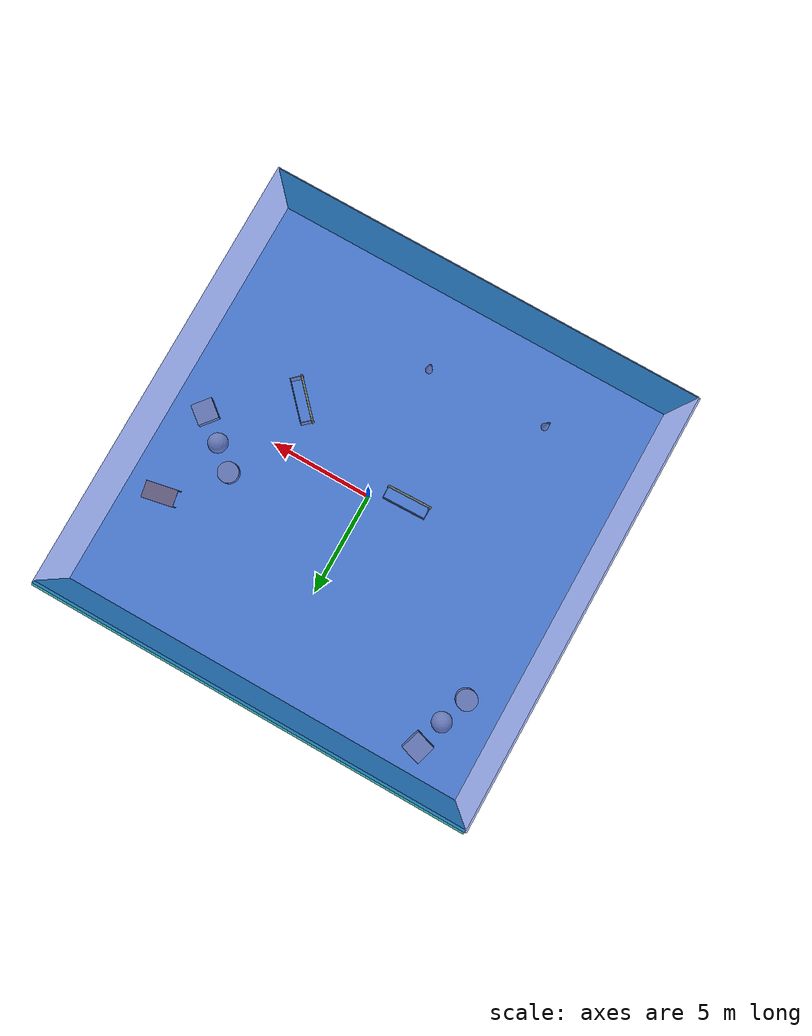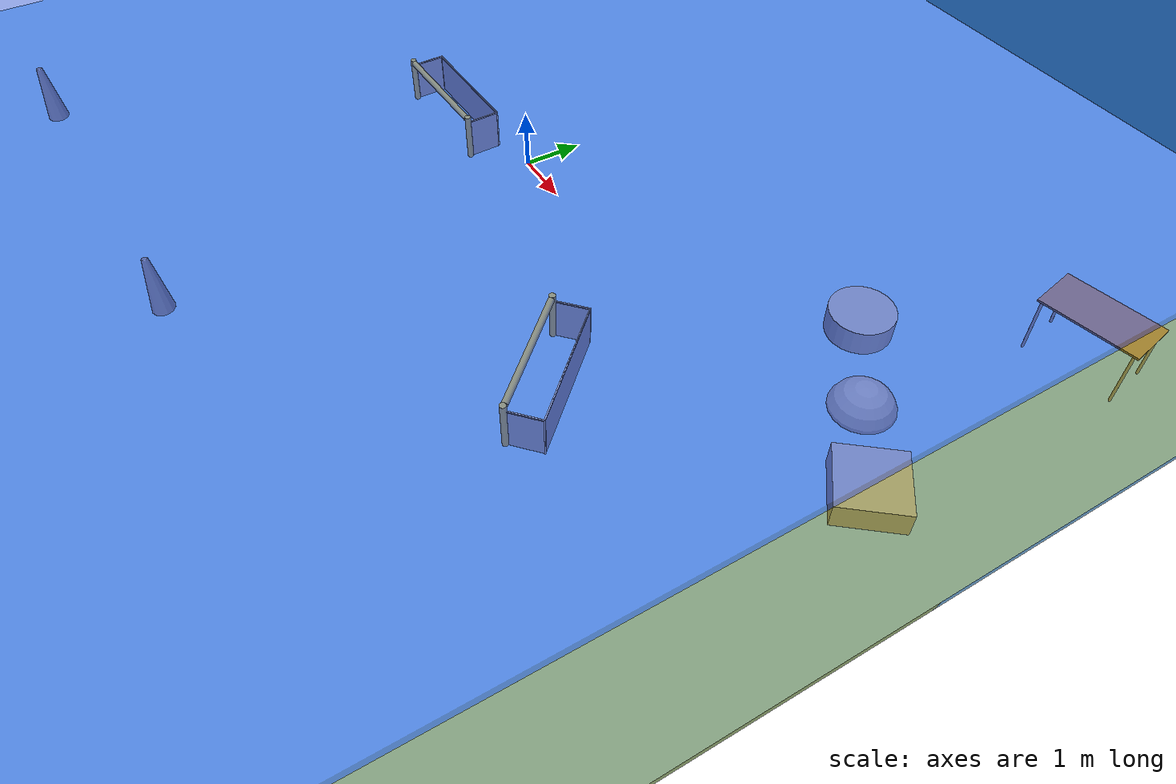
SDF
<sdf version="1.4">
 <world name="default">
  <physics type="ode">
   <max_step_size>0.001</max_step_size>
   <real_time_factor>1</real_time_factor>
   <real_time_update_rate>1000</real_time_update_rate>
   <gravity>0 0 -9.8</gravity>
  </physics>
  <scene><ambient>0.4 0.4 0.4 1</ambient><background>0.7 0.7 0.7 1</background><shadows>1</shadows></scene>
  <model name="Surrounding">
   <static>1</static>
   <link name="Ceiling">
    <collision name="Ceiling_Collision"><geometry><box><size>20 20 0.1</size></box></geometry></collision>
    <visual name="Ceiling_Visual">
     <geometry><box><size>20 20 0.1</size></box></geometry>
     <material>
      <script><uri>file://media/materials/scripts/gazebo.material</uri><name>Gazebo/BlueTransparent</name></script>
     </material>
    </visual>
    <pose>0 0 4.05 0 0 0</pose>
   </link>
   <link name="Wall_South">
    <collision name="Wall_South_Collision">
     <geometry><box><size>20 0 4</size></box></geometry>
     <pose>0 0 2 0 -0 0</pose>
    </collision>
    <visual name="Wall_South_Visual">
     <pose>0 0 2 0 -0 0</pose>
     <geometry><box><size>20 0 4</size></box></geometry>
     <material>
      <script><uri>file://media/materials/scripts/gazebo.material</uri><name>Gazebo/Turquoise</name></script>
     </material>
    </visual>
    <velocity_decay><linear>0</linear><angular>0</angular></velocity_decay>
    <pose>0 -10 0 0 -0 0</pose>
   </link>
   <link name="Wall_East">
    <collision name="Wall_21_Collision">
     <geometry><box><size>20 0 4</size></box></geometry>
     <pose>0 0 2 0 -0 0</pose>
    </collision>
    <visual name="Wall_21_Visual">
     <pose>0 0 2 0 -0 0</pose>
     <geometry><box><size>20 0 4</size></box></geometry>
     <material>
      <script>
       <uri>file://media/materials/scripts/gazebo.material</uri>
       <name>Gazebo/YellowTransparent</name>
      </script>
     </material>
    </visual>
    <velocity_decay><linear>0</linear><angular>0</angular></velocity_decay>
    <pose>10 0 0 0 -0 1.5708</pose>
   </link>
   <link name="Wall_North">
    <collision name="Wall_22_Collision">
     <geometry><box><size>20 0.2 4</size></box></geometry>
     <pose>0 0 2 0 -0 0</pose>
    </collision>
    <visual name="Wall_22_Visual">
     <pose>0 0 2 0 -0 0</pose>
     <geometry><box><size>20 0.2 4</size></box></geometry>
     <material>
      <script><uri>file://media/materials/scripts/gazebo.material</uri><name>Gazebo/TurquoiseGlow</name></script>
     </material>
    </visual>
    <velocity_decay><linear>0</linear><angular>0</angular></velocity_decay>
    <pose>0 10 0 0 -0 0</pose>
   </link>
   <link name="Wall_West">
    <collision name="Wall_23_Collision">
     <geometry><box><size>20 0.2 4</size></box></geometry>
     <pose>0 0 2 0 -0 0</pose>
    </collision>
    <visual name="Wall_23_Visual">
     <pose>0 0 2 0 -0 0</pose>
     <geometry><box><size>20 0.2 4</size></box></geometry>
     <material>
      <script><uri>file://media/materials/scripts/gazebo.material</uri><name>Gazebo/BlueTransparent</name></script>
     </material>
    </visual>
    <velocity_decay><linear>0</linear><angular>0</angular></velocity_decay>
    <pose>-10 0 0 0 0 -1.5708</pose>
   </link>
   <link name="Ground_link">
    <collision name="collision">
     <pose>0 0 .05 0 -0 0</pose>
     <geometry><box><size>20 20 0.1</size></box></geometry>
    </collision>
    <visual name="visual">
     <pose>0 0 .05 0 -0 0</pose>
     <geometry><box><size>20 20 0.1</size></box></geometry>
     <material>
      <script><uri>file://media/materials/scripts/gazebo.material</uri><name>Gazebo/SkyBlue</name></script>
     </material>
    </visual>
   </link>
   <static>1</static>
  </model>
  <spherical_coordinates>
   <surface_model>EARTH_WGS84</surface_model>
   <latitude_deg>0</latitude_deg>
   <longitude_deg>0</longitude_deg>
   <elevation>0</elevation>
   <heading_deg>0</heading_deg>
  </spherical_coordinates>
  <light name="lightball_0" type="diffuse">
   <diffuse>0.8 0.8 0.8 1</diffuse>
   <specular>0.2 0.2 0.2 1</specular>
   <attenuation>
    <range>100</range>
    <constant>0.7</constant>
    <linear>0.01</linear>
    <quadratic>0.001</quadratic>
   </attenuation>
   <direction>-0.5 0.1 -0.9</direction>
   <pose>5.56895749326 7.89473589311 1.58535382764 0 0 0</pose>
  </light>
  <light name="lightball_1" type="diffuse">
   <diffuse>0.8 0.8 0.8 1</diffuse>
   <specular>0.2 0.2 0.2 1</specular>
   <attenuation>
    <range>100</range>
    <constant>0.7</constant>
    <linear>0.01</linear>
    <quadratic>0.001</quadratic>
   </attenuation>
   <direction>-0.5 0.1 -0.9</direction>
   <pose>9.67409164938 1.06460719817 2.26815538115 0 0 0</pose>
  </light>
  <light name="lightball_2" type="diffuse">
   <diffuse>0.8 0.8 0.8 1</diffuse>
   <specular>0.2 0.2 0.2 1</specular>
   <attenuation>
    <range>100</range>
    <constant>0.7</constant>
    <linear>0.01</linear>
    <quadratic>0.001</quadratic>
   </attenuation>
   <direction>-0.5 0.1 -0.9</direction>
   <pose>6.60865446163 -8.46147771225 3.59632177494 0 0 0</pose>
  </light>
  <light name="lightball_3" type="diffuse">
   <diffuse>0.8 0.8 0.8 1</diffuse>
   <specular>0.2 0.2 0.2 1</specular>
   <attenuation>
    <range>100</range>
    <constant>0.7</constant>
    <linear>0.01</linear>
    <quadratic>0.001</quadratic>
   </attenuation>
   <direction>-0.5 0.1 -0.9</direction>
   <pose>4.57355675059 9.21305084786 3.55548248102 0 0 0</pose>
  </light>
  <include>
   <uri>model://textured_shapes</uri>
   <pose>-7.83170419523 7.2113250823 0 0 0 2.84539326784</pose>
  </include>
  <include>
   <uri>model://construction_cone</uri>
   <pose>-5.48472821528 -6.78743844463 0 0 0 1.76251139108</pose>
  </include>
  <include>
   <uri>model://robocup_3Dsim_goal</uri>
   <pose>-1.63111302749 -0.84249069395 0 0 0 1.59544084265</pose>
  </include>
  <include>
   <uri>model://construction_cone</uri>
   <pose>0.453779842583 -6.49005804525 0 0 0 2.73904666664</pose>
  </include>
  <include>
   <uri>model://robocup_3Dsim_goal</uri>
   <pose>4.61364801705 -2.49127060844 0 0 0 0.74611419742</pose>
  </include>
  <include>
   <uri>model://textured_shapes</uri>
   <pose>7.25079888985 1.25380687334 0 0 0 0.889181807888</pose>
  </include>
  <include><uri>model://table</uri><pose>8.15947340041 4.53338498016 0 0 0 0.191505837391</pose></include>
 </world>
</sdf>

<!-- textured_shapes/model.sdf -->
<sdf version="1.6">
  <model name="textured_shapes">
    <pose>0 0 0.5 0 0 0</pose>
    <link name="box">
      <pose>0 -1.5 0 0 0 0</pose>
      <collision name="collision">
        <geometry>
          <box>
            <size>1 1 1</size>
          </box>
        </geometry>
      </collision>
      <visual name="visual">
        <geometry>
          <box>
            <size>1 1 1</size>
          </box>
        </geometry>
        <material>
          <script>
            <uri>model://../model_source/models/textured_shapes/materials/scripts</uri>
            <uri>model://../model_source/models/textured_shapes/materials/textures</uri>
            <name>TexturedShape/Squares</name>
          </script>
        </material>
      </visual>
    </link>
    <link name="sphere">
      <collision name="collision">
        <geometry>
          <sphere>
            <radius>0.5</radius>
          </sphere>
        </geometry>
      </collision>
      <visual name="visual">
        <geometry>
          <sphere>
            <radius>0.5</radius>
          </sphere>
        </geometry>
        <material>
          <script>
            <uri>model://../model_source/models/textured_shapes/materials/scripts</uri>
            <uri>model://../model_source/models/textured_shapes/materials/textures</uri>
            <name>TexturedShape/Squares</name>
          </script>
        </material>
      </visual>
    </link>
    <link name="cylinder">
      <pose>0 1.5 0 0 0 0</pose>
      <collision name="collision">
        <geometry>
          <cylinder>
            <radius>0.5</radius>
            <length>1</length>
          </cylinder>
        </geometry>
      </collision>
      <visual name="visual">
        <geometry>
          <cylinder>
            <radius>0.5</radius>
            <length>1</length>
          </cylinder>
        </geometry>
        <material>
          <script>
            <uri>model://../model_source/models/textured_shapes/materials/scripts</uri>
            <uri>model://../model_source/models/textured_shapes/materials/textures</uri>
            <name>TexturedShape/Squares</name>
          </script>
        </material>
      </visual>
    </link>
  </model>
</sdf>

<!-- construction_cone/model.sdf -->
<sdf version="1.5">
  <model name="Construction Cone">
    <link name="link">
      <collision name="collision">
        <geometry>
          <mesh>
            <scale>10 10 10</scale>
            <uri>file://isr-testbed/construction_cone/meshes/construction_cone.dae</uri>
          </mesh>
        </geometry>
      </collision>
      <visual name="visual">
        <geometry>
          <mesh>
            <scale>10 10 10</scale>
            <uri>file://isr-testbed/construction_cone/meshes/construction_cone.dae</uri>
          </mesh>
        </geometry>
      </visual>
    </link>
  </model>
</sdf>

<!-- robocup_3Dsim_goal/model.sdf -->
<sdf version="1.5">
  <model name="robocup_3d_goal">
    <static>true</static>
    <link name="left_post">
      <pose>0 1.05 0.45 0 0 0</pose>
      <collision name="collision">
        <geometry>
          <cylinder>
            <radius>0.05</radius>
            <length>0.9</length>
          </cylinder>
        </geometry>
      </collision>
      <visual name="visual">
        <geometry>
          <cylinder>
            <radius>0.05</radius>
            <length>0.9</length>
          </cylinder>
        </geometry>
        <material>
          <script>
            <uri>file://media/materials/scripts/gazebo.material</uri>
            <name>Gazebo/ZincYellow</name>
          </script>
        </material>
      </visual>
    </link>
    <link name="left_support_horiz_lower">
      <pose>0.30 1.05 0.01 0 0 0</pose>
      <collision name="collision">
        <geometry>
          <box>
            <size>0.50 0.02 0.02</size>
          </box>
        </geometry>
      </collision>
      <visual name="visual">
        <geometry>
          <box>
            <size>0.50 0.02 0.02</size>
          </box>
        </geometry>
        <material>
          <script>
            <uri>file://media/materials/scripts/gazebo.material</uri>
            <name>Gazebo/White</name>
          </script>
        </material>
      </visual>
    </link>
    <link name="left_support_horiz_upper">
      <pose>0.30 1.05 0.79 0 0 0</pose>
      <collision name="collision">
        <geometry>
          <box>
            <size>0.50 0.02 0.02</size>
          </box>
        </geometry>
      </collision>
      <visual name="visual">
        <geometry>
          <box>
            <size>0.50 0.02 0.02</size>
          </box>
        </geometry>
        <material>
          <script>
            <uri>file://media/materials/scripts/gazebo.material</uri>
            <name>Gazebo/White</name>
          </script>
        </material>
      </visual>
    </link>
    <link name="left_support_vertical">
      <pose>0.56 1.05 0.4 0 1.5708 0</pose>
      <collision name="collision">
        <geometry>
          <box>
            <size>0.80 0.02 0.02</size>
          </box>
        </geometry>
      </collision>
      <visual name="visual">
        <geometry>
          <box>
            <size>0.80 0.02 0.02</size>
          </box>
        </geometry>
        <material>
          <script>
            <uri>file://media/materials/scripts/gazebo.material</uri>
            <name>Gazebo/White</name>
          </script>
        </material>
      </visual>
    </link>
    <link name="right_support_horiz_lower">
      <pose>0.30 -1.05 0.01 0 0 0</pose>
      <collision name="collision">
        <geometry>
          <box>
            <size>0.50 0.02 0.02</size>
          </box>
        </geometry>
      </collision>
      <visual name="visual">
        <geometry>
          <box>
            <size>0.50 0.02 0.02</size>
          </box>
        </geometry>
        <material>
          <script>
            <uri>file://media/materials/scripts/gazebo.material</uri>
            <name>Gazebo/White</name>
          </script>
        </material>
      </visual>
    </link>
    <link name="right_support_horiz_upper">
      <pose>0.30 -1.05 0.79 0 0 0</pose>
      <collision name="collision">
        <geometry>
          <box>
            <size>0.50 0.02 0.02</size>
          </box>
        </geometry>
      </collision>
      <visual name="visual">
        <geometry>
          <box>
            <size>0.50 0.02 0.02</size>
          </box>
        </geometry>
        <material>
          <script>
            <uri>file://media/materials/scripts/gazebo.material</uri>
            <name>Gazebo/White</name>
          </script>
        </material>
      </visual>
    </link>
    <link name="right_support_vertical">
      <pose>0.56 -1.05 0.4 0 1.5708 0</pose>
      <collision name="collision">
        <geometry>
          <box>
            <size>0.80 0.02 0.02</size>
          </box>
        </geometry>
      </collision>
      <visual name="visual">
        <geometry>
          <box>
            <size>0.80 0.02 0.02</size>
          </box>
        </geometry>
        <material>
          <script>
            <uri>file://media/materials/scripts/gazebo.material</uri>
            <name>Gazebo/White</name>
          </script>
        </material>
      </visual>
    </link>
    <link name="center_support_horiz_lower">
      <pose>0.56 0 0.01 0 1.5708 0</pose>
      <collision name="collision">
        <geometry>
          <box>
            <size>0.02 2.08 0.02</size>
          </box>
        </geometry>
      </collision>
      <visual name="visual">
        <geometry>
          <box>
            <size>0.02 2.08 0.02</size>
          </box>
        </geometry>
        <material>
          <script>
            <uri>file://media/materials/scripts/gazebo.material</uri>
            <name>Gazebo/White</name>
          </script>
        </material>
      </visual>
    </link>
    <link name="center_support_horiz_upper">
      <pose>0.56 0 0.79 0 1.5708 0</pose>
      <collision name="collision">
        <geometry>
          <box>
            <size>0.02 2.08 0.02</size>
          </box>
        </geometry>
      </collision>
      <visual name="visual">
        <geometry>
          <box>
            <size>0.02 2.08 0.02</size>
          </box>
        </geometry>
        <material>
          <script>
            <uri>file://media/materials/scripts/gazebo.material</uri>
            <name>Gazebo/White</name>
          </script>
        </material>
      </visual>
    </link>
    <link name="right_post">
      <pose>0 -1.05 0.45 0 0 0</pose>
      <collision name="collision">
        <geometry>
          <cylinder>
            <radius>0.05</radius>
            <length>0.9</length>
          </cylinder>
        </geometry>
      </collision>
      <visual name="visual">
        <geometry>
          <cylinder>
            <radius>0.05</radius>
            <length>0.9</length>
          </cylinder>
        </geometry>
        <material>
          <script>
            <uri>file://media/materials/scripts/gazebo.material</uri>
            <name>Gazebo/ZincYellow</name>
          </script>
        </material>
      </visual>
    </link>
    <link name="crossbar">
      <pose>0 0 0.85 1.57 1.57 0</pose>
      <collision name="collision">
        <geometry>
          <cylinder>
            <radius>0.05</radius>
            <length>2.0</length>
          </cylinder>
        </geometry>
      </collision>
      <visual name="visual">
        <geometry>
          <cylinder>
            <radius>0.05</radius>
            <length>2.0</length>
          </cylinder>
        </geometry>
        <material>
          <script>
            <uri>file://media/materials/scripts/gazebo.material</uri>
            <name>Gazebo/ZincYellow</name>
          </script>
        </material>
      </visual>
    </link>
    <link name="center_net">
      <pose>0.56 0 0.40 0 0 0</pose>
      <collision name="collision">
        <geometry>
          <box>
            <size>0.01 2.1 0.80</size>
          </box>
        </geometry>
      </collision>
      <visual name="visual">
        <geometry>
          <box>
            <size>0.01 2.1 0.80</size>
          </box>
        </geometry>
        <material>
          <script>
            <uri>model://../model_source/models/robocup09_spl_field/materials/scripts/</uri>
            <uri>model://../model_source/models/robocup09_spl_field/materials/textures/</uri>
            <name>RoboCup/Net</name>
          </script>
        </material>
      </visual>
    </link>
    <link name="left_net">
      <pose>0.30 1.05 0.40 0 0 0</pose>
      <collision name="collision">
        <geometry>
          <box>
            <size>0.50 0.01 0.76</size>
          </box>
        </geometry>
      </collision>
      <visual name="visual">
        <geometry>
          <box>
            <size>0.50 0.01 0.76</size>
          </box>
        </geometry>
        <material>
          <script>
            <uri>model://../model_source/models/robocup09_spl_field/materials/scripts/</uri>
            <uri>model://../model_source/models/robocup09_spl_field/materials/textures/</uri>
            <name>RoboCup/Net</name>
          </script>
        </material>
      </visual>
    </link>
    <link name="right_net">
      <pose>0.30 -1.05 0.40 0 0 0</pose>
      <collision name="collision">
        <geometry>
          <box>
            <size>0.50 0.01 0.76</size>
          </box>
        </geometry>
      </collision>
      <visual name="visual">
        <geometry>
          <box>
            <size>0.50 0.01 0.76</size>
          </box>
        </geometry>
        <material>
          <script>
            <uri>model://../model_source/models/robocup09_spl_field/materials/scripts/</uri>
            <uri>model://../model_source/models/robocup09_spl_field/materials/textures/</uri>
            <name>RoboCup/Net</name>
          </script>
        </material>
      </visual>
    </link>
  </model>
</sdf>

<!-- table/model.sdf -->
<sdf version="1.5">
  <model name="table">
    <static>true</static>
    <link name="link">
      <collision name="surface">
        <pose>0 0 1.0 0 0 0</pose>
        <geometry>
          <box>
            <size>1.5 0.8 0.03</size>
          </box>
        </geometry>
        <surface>
          <friction>
            <ode>
              <mu>0.6</mu>
              <mu2>0.6</mu2>
            </ode>
          </friction>
        </surface>
      </collision>
      <visual name="visual1">
        <pose>0 0 1.0 0 0 0</pose>
        <geometry>
          <box>
            <size>1.5 0.8 0.03</size>
          </box>
        </geometry>
        <material>
          <script>
            <uri>model://media/materials/scripts/gazebo.material</uri>
            <name>Gazebo/Wood</name>
          </script>
        </material>
      </visual>
      <collision name="front_left_leg">
        <pose>0.68 0.38 0.5 0 0 0</pose>
        <geometry>
          <cylinder>
            <radius>0.02</radius>
            <length>1.0</length>
          </cylinder>
        </geometry>
      </collision>
      <visual name="front_left_leg">
        <pose>0.68 0.38 0.5 0 0 0</pose>
        <geometry>
          <cylinder>
            <radius>0.02</radius>
            <length>1.0</length>
          </cylinder>
        </geometry>
        <material>
          <script>
            <uri>model://media/materials/scripts/gazebo.material</uri>
            <name>Gazebo/Grey</name>
          </script>
        </material>
      </visual>
      <collision name="front_right_leg">
        <pose>0.68 -0.38 0.5 0 0 0</pose>
        <geometry>
          <cylinder>
            <radius>0.02</radius>
            <length>1.0</length>
          </cylinder>
        </geometry>
      </collision>
      <visual name="front_right_leg">
        <pose>0.68 -0.38 0.5 0 0 0</pose>
        <geometry>
          <cylinder>
            <radius>0.02</radius>
            <length>1.0</length>
          </cylinder>
        </geometry>
        <material>
          <script>
            <uri>model://media/materials/scripts/gazebo.material</uri>
            <name>Gazebo/Grey</name>
          </script>
        </material>
      </visual>
      <collision name="back_right_leg">
        <pose>-0.68 -0.38 0.5 0 0 0</pose>
        <geometry>
          <cylinder>
            <radius>0.02</radius>
            <length>1.0</length>
          </cylinder>
        </geometry>
      </collision>
      <visual name="back_right_leg">
        <pose>-0.68 -0.38 0.5 0 0 0</pose>
        <geometry>
          <cylinder>
            <radius>0.02</radius>
            <length>1.0</length>
          </cylinder>
        </geometry>
        <material>
          <script>
            <uri>model://media/materials/scripts/gazebo.material</uri>
            <name>Gazebo/Grey</name>
          </script>
        </material>
      </visual>
      <collision name="back_left_leg">
        <pose>-0.68 0.38 0.5 0 0 0</pose>
        <geometry>
          <cylinder>
            <radius>0.02</radius>
            <length>1.0</length>
          </cylinder>
        </geometry>
      </collision>
      <visual name="back_left_leg">
        <pose>-0.68 0.38 0.5 0 0 0</pose>
        <geometry>
          <cylinder>
            <radius>0.02</radius>
            <length>1.0</length>
          </cylinder>
        </geometry>
        <material>
          <script>
            <uri>model://media/materials/scripts/gazebo.material</uri>
            <name>Gazebo/Grey</name>
          </script>
        </material>
      </visual>
    </link>
  </model>
</sdf>
